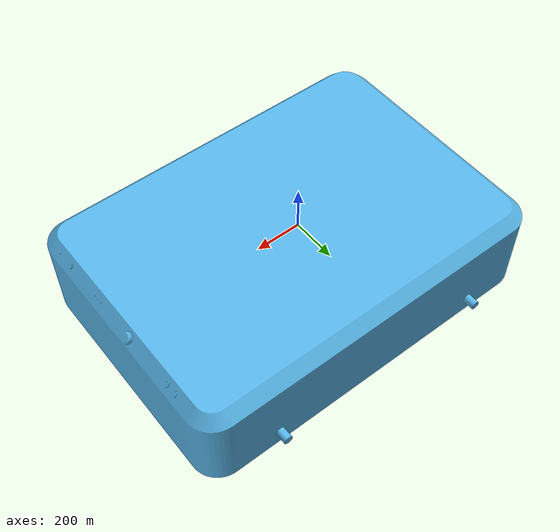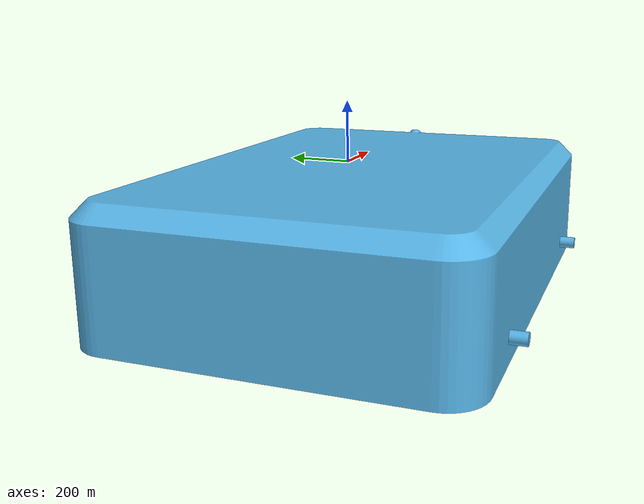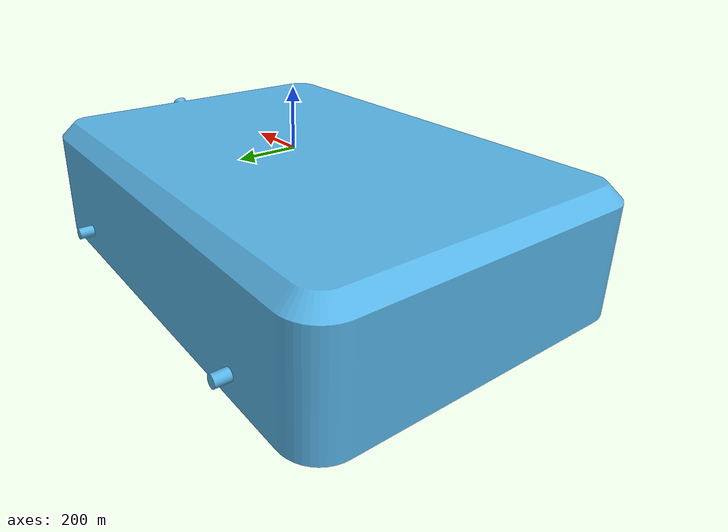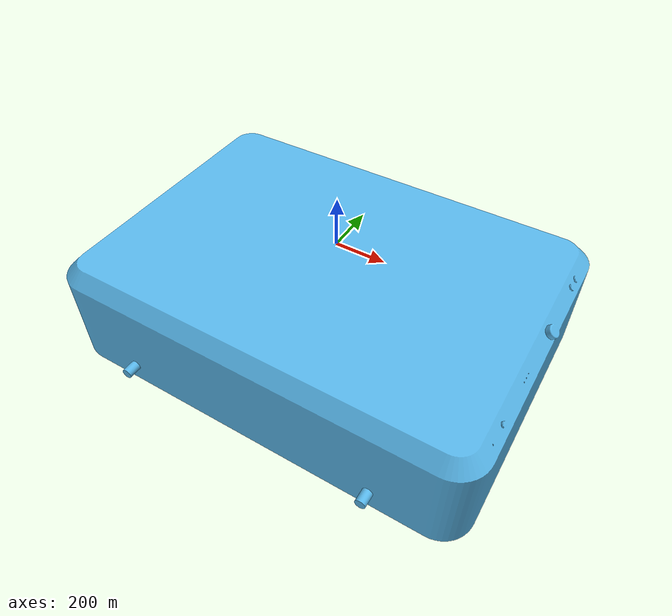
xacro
<?xml version="1.0" ?>
<robot name = "Diff_Drive" xmlns:xacro ="http://ros.org/wiki/xacro">
<!--  Materials Included   -->
    <material name = "Black">
        <color rgba = "0 0 0 1"/>
    </material>
    <material name="White">
        <color rgba = "1.0 1.0 1.0 1.0 "/>
    </material>

<!--    Transmission Block-->
    <xacro:macro name="Transmission_Block" params="joint_name">
        <transmission name="${joint_name}_trans">
            <type>transmission_interface/SimpleTransmission</type>
            <joint name="${joint_name}">
                <hardwareInterface>hardware_interface/PositionJointInterface</hardwareInterface>
            </joint>
            <actuator name="${joint_name}_motor">
                <mechanicalReduction>1</mechanicalReduction>
            </actuator>
        </transmission>
    </xacro:macro>

<!--Dummy link-->
    <link name="dummy"/>
<!--    Chassis-->
    <link name = "chassis">
        <inertial>
            <origin xyz="0 0 0 " rpy="0 0 0 "/>
            <mass value="811.10"/>
            <inertia ixx="104.10" ixy="0.0" ixz="0.00"
                     iyy="194.79" iyz="0.0"
                     izz="275.36"/>
        </inertial>
        <visual>
            <origin rpy = "3.14 0 0" xyz = "0 0 0"/>
            <geometry>
                <mesh filename="package://mobilebot_description/meshes/visual/mobile_base.dae" />
            </geometry>
        </visual>
        <collision>
            <origin rpy = "3.14 0 0" xyz = "0 0 0"/>
            <geometry>
                <mesh filename="package://mobilebot_description/meshes/collision/mobile_base.stl" />
            </geometry>
        </collision>
    </link>

    <gazebo reference="chassis">
        <turnGravityOff>false</turnGravityOff>
    </gazebo>

    <joint name="dummy_joint" type="fixed">
        <parent link="dummy"/>
        <child link="chassis"/>
        <origin xyz="0.0 0.0 0.43" rpy="0 0 0" />
        <axis xyz="0 0 1" rpy="0 0 0" />
    </joint>

    <!--    Wheels-->
    <xacro:macro name="wheel" params="prefix suffix X Y Z">
        <link name="${prefix}_${suffix}_wheel">
            <inertial>
                <mass value="6.28" />
                <origin xyz="0 0 0" />
                <inertia  ixx="0.03" ixy="0" ixz="0" iyy="0.03" iyz="0" izz="0.05" />
            </inertial>
            <visual>
                <origin rpy="1.57 0 0" xyz="0 0 0"/>
                <geometry>
                    <mesh filename="package://mobilebot_description/meshes/visual/wheel_mobile_base.dae" />
                </geometry>
                <material name="Black"/>
            </visual>
            <collision>
                <origin rpy="1.57 0 0" xyz="0 0 0"/>
                <geometry>
                    <mesh filename="package://mobilebot_description/meshes/collision/wheel_mobile_base.stl" />
                </geometry>
            </collision>
        </link>>

        <gazebo reference="${prefix}_${suffix}_wheel">
            <material>Gazebo/Black</material>
            <turnGravityOff>false</turnGravityOff>
            <mu1 value="1000000.0"/>
            <mu2 value="100.0"/>
            <fdir1>1 0 0</fdir1>
            <kp value="100000000000000000.0"/>
            <kd value="1.0"/>
        </gazebo>

        <joint name="${prefix}_${suffix}_wheel_joint" type="continuous">
            <parent link="chassis"/>
            <child link="${prefix}_${suffix}_wheel"/>
            <origin xyz="${X} ${Y} ${Z}" rpy="0 0 0"/>
            <axis xyz="0 1 0"/>
            <limit effort = "100" velocity = "100"/>
            <dynamics damping = "0.0" friction = "0.0"/>
        </joint>

        <transmission name="${prefix}_${suffix}_wheel_trans">
            <type>transmission_interface/SimpleTransmission</type>
            <actuator name="${prefix}_${suffix}_wheel_motor">
                <hardwareInterface>hardware_interface/VelocityJointInterface</hardwareInterface>
                <mechanicalReduction>1</mechanicalReduction>
            </actuator>
            <joint name="${prefix}_${suffix}_wheel_joint">
                <hardwareInterface>hardware_interface/VelocityJointInterface</hardwareInterface>
            </joint>
        </transmission>
    </xacro:macro>

    <xacro:wheel prefix="left" suffix="back" X="0.465" Y="-0.76" Z="-0.35"/>
    <xacro:wheel prefix="left" suffix="front" X="-0.535" Y="-0.76" Z="-0.35"/>
    <xacro:wheel prefix="right" suffix="back" X="0.465" Y="0.64" Z="-0.35"/>
    <xacro:wheel prefix="right" suffix="front" X="-0.535" Y="0.64" Z="-0.35"/>

    <link name="hokuyo_sensor">
        <visual>
            <origin xyz="0 0 0" rpy="0 0 0"/>
            <geometry>
                <box size="0.05 0.05 0.05"/>
            </geometry>
            <material name="Blue"/>
        </visual>
    </link>

    <joint name="hokuyo_joint" type="fixed">
        <origin xyz="0.7 0 0" rpy="0 0 0"/>
        <parent link="chassis"/>
        <child link="hokuyo_sensor"/>
    </joint>

    <gazebo reference="hokuyo_sensor">
        <material>Gazebo/Blue</material>
        <turnGravityOff>false</turnGravityOff>
        <sensor type="ray" name="chassis_hokuyo_sensor">
            <pose>0.025 0 0 0 0 0</pose>
            <visualize>false</visualize>
            <update_rate>40</update_rate>
            <ray>
                <scan>
                    <horizontal>
                        <samples>720</samples>
                        <resolution>1</resolution>
                        <min_angle>-1.57</min_angle>
                        <max_angle>1.57</max_angle>
                    </horizontal>
                </scan>
                <range>
                    <min>0.10</min>
                    <max>10.0</max>
                    <resolution>0.001</resolution>
                </range>
            </ray>
            <plugin name="gazebo_ros_head_hokuyo_controller" filename="libgazebo_ros_laser.so">
                <topicName>/scan</topicName>
                <frameName>hokuyo_sensor</frameName>
            </plugin>
        </sensor>
    </gazebo>

<!--    ROS Control Plugin-->
    <gazebo>
        <plugin name="gazebo_ros_control"  filename="libgazebo_ros_control.so">
            <robotNamespace>/</robotNamespace>
            <legacyModeNS>true</legacyModeNS>
        </plugin>
    </gazebo>

</robot>
